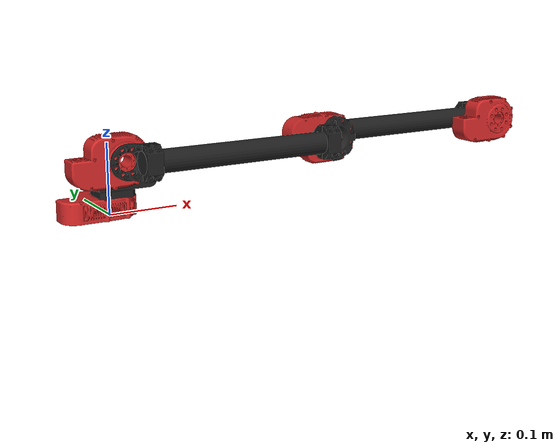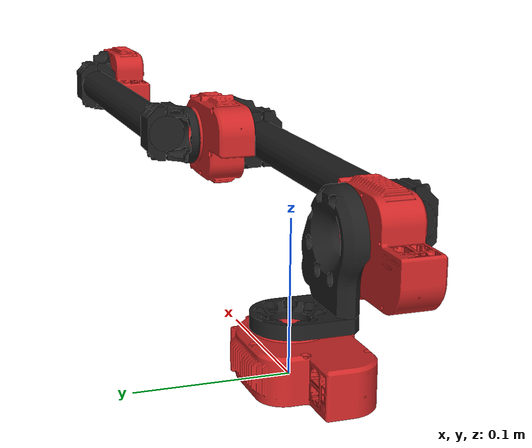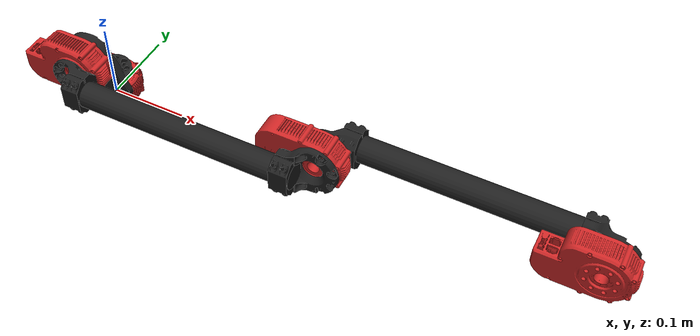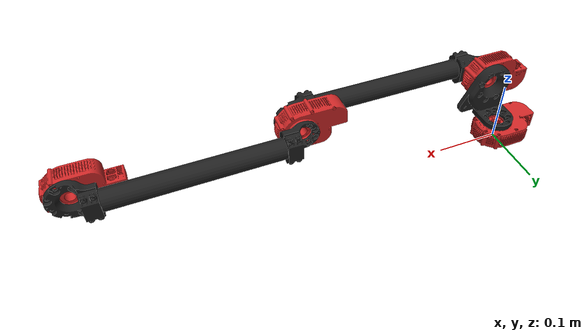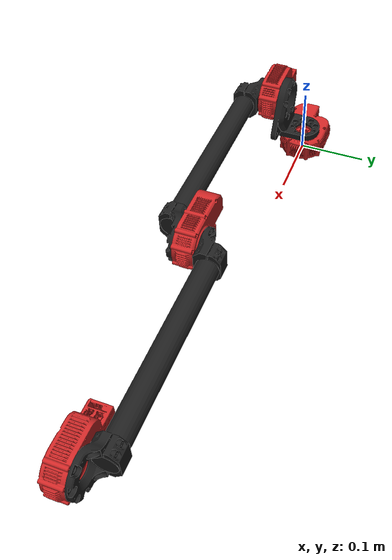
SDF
<sdf version='1.6'>
  <model name='A-2085-04'>
    <link name='Arm/J1_base/INPUT_INTERFACE'>
      <pose frame=''>0 0 0 0 -0 0</pose>
      <inertial>
        <pose frame=''>-0.0142 -0.0031 0.0165 0 -0 0</pose>
        <mass>0.335</mass>
        <inertia>
          <ixx>0.00015</ixx>
          <ixy>3.41e-05</ixy>
          <ixz>1.18e-05</ixz>
          <iyy>0.000255</iyy>
          <iyz>2.29e-06</iyz>
          <izz>0.00035</izz>
        </inertia>
      </inertial>
      <collision name='Arm/J1_base/INPUT_INTERFACE_collision'>
        <pose frame=''>0 0 0 0 -0 0</pose>
        <geometry>
          <mesh>
            <scale>0.001 0.001 0.001</scale>
            <uri>model://meshes/X5.stl</uri>
          </mesh>
        </geometry>
        <surface>
          <contact>
            <ode/>
          </contact>
          <friction>
            <ode/>
          </friction>
        </surface>
      </collision>
      <visual name='Arm/J1_base/INPUT_INTERFACE_visual'>
        <pose frame=''>0 0 0 0 -0 0</pose>
        <geometry>
          <mesh>
            <scale>0.001 0.001 0.001</scale>
            <uri>model://meshes/X5.stl</uri>
          </mesh>
        </geometry>
        <material>
          <script>
            <name>Gazebo/Red</name>
            <uri>file://media/materials/scripts/gazebo.material</uri>
          </script>
        </material>
      </visual>
      <gravity>1</gravity>
      <velocity_decay/>
    </link>
    <joint name='world_joint' type='fixed'>
      <child>Arm/J1_base/INPUT_INTERFACE</child>
      <parent>world</parent>
    </joint>
    <link name='shoulder_bracket/INPUT_INTERFACE'>
      <pose frame=''>0 0 0.031 0 -0 0</pose>
      <inertial>
        <pose frame=''>0 -0.01875 0.0275 0 -0 0</pose>
        <mass>0.215</mass>
        <inertia>
          <ixx>0.0003096</ixx>
          <ixy>0</ixy>
          <ixz>0</ixz>
          <iyy>0.0003096</iyy>
          <iyz>0</iyz>
          <izz>0.0003096</izz>
        </inertia>
      </inertial>
      <collision name='shoulder_bracket/INPUT_INTERFACE_collision'>
        <pose frame=''>0 0 0.005 1.5708 -0 1.5708</pose>
        <geometry>
          <mesh>
            <scale>0.001 0.001 0.001</scale>
            <uri>model://meshes/PM-2149-01.stl</uri>
          </mesh>
        </geometry>
        <surface>
          <contact>
            <ode/>
          </contact>
          <friction>
            <ode/>
          </friction>
        </surface>
      </collision>
      <collision name='shoulder_bracket/INPUT_INTERFACE_collision_1'>
        <pose frame=''>0 -0.03 0.04 1.5708 -0 0</pose>
        <geometry>
          <mesh>
            <scale>0.001 0.001 0.001</scale>
            <uri>model://meshes/PM-2150-01R.stl</uri>
          </mesh>
        </geometry>
        <surface>
          <contact>
            <ode/>
          </contact>
          <friction>
            <ode/>
          </friction>
        </surface>
      </collision>
      <visual name='shoulder_bracket/INPUT_INTERFACE_visual'>
        <pose frame=''>0 0 0.005 1.5708 -0 1.5708</pose>
        <geometry>
          <mesh>
            <scale>0.001 0.001 0.001</scale>
            <uri>model://meshes/PM-2149-01.stl</uri>
          </mesh>
        </geometry>
        <material>
          <script>
            <name>Gazebo/Black</name>
            <uri>file://media/materials/scripts/gazebo.material</uri>
          </script>
        </material>
      </visual>
      <visual name='shoulder_bracket/INPUT_INTERFACE_visual_1'>
        <pose frame=''>0 -0.03 0.04 1.5708 -0 0</pose>
        <geometry>
          <mesh>
            <scale>0.001 0.001 0.001</scale>
            <uri>model://meshes/PM-2150-01R.stl</uri>
          </mesh>
        </geometry>
        <material>
          <script>
            <name>Gazebo/Black</name>
            <uri>file://media/materials/scripts/gazebo.material</uri>
          </script>
        </material>
      </visual>
      <gravity>1</gravity>
      <velocity_decay/>
    </link>
    <joint name='Arm/J1_base' type='revolute'>
      <child>shoulder_bracket/INPUT_INTERFACE</child>
      <parent>Arm/J1_base/INPUT_INTERFACE</parent>
      <axis>
        <xyz>0 0 1</xyz>
        <limit>
          <lower>-1e+16</lower>
          <upper>1e+16</upper>
        </limit>
        <dynamics>
          <damping>0.1</damping>
          <friction>0.1</friction>
          <spring_reference>0</spring_reference>
          <spring_stiffness>0</spring_stiffness>
        </dynamics>
        <use_parent_model_frame>1</use_parent_model_frame>
      </axis>
    </joint>
    <link name='Arm/J2_shoulder/INPUT_INTERFACE'>
      <pose frame=''>0 -0.0375 0.086 1.5708 -0 0</pose>
      <inertial>
        <pose frame=''>-0.0142 -0.0031 0.0165 0 -0 0</pose>
        <mass>0.36</mass>
        <inertia>
          <ixx>0.00015</ixx>
          <ixy>3.41e-05</ixy>
          <ixz>1.18e-05</ixz>
          <iyy>0.000255</iyy>
          <iyz>2.29e-06</iyz>
          <izz>0.00035</izz>
        </inertia>
      </inertial>
      <collision name='Arm/J2_shoulder/INPUT_INTERFACE_collision'>
        <pose frame=''>0 0 0 0 -0 0</pose>
        <geometry>
          <mesh>
            <scale>0.001 0.001 0.001</scale>
            <uri>model://meshes/X5.stl</uri>
          </mesh>
        </geometry>
        <surface>
          <contact>
            <ode/>
          </contact>
          <friction>
            <ode/>
          </friction>
        </surface>
      </collision>
      <visual name='Arm/J2_shoulder/INPUT_INTERFACE_visual'>
        <pose frame=''>0 0 0 0 -0 0</pose>
        <geometry>
          <mesh>
            <scale>0.001 0.001 0.001</scale>
            <uri>model://meshes/X5.stl</uri>
          </mesh>
        </geometry>
        <material>
          <script>
            <name>Gazebo/Red</name>
            <uri>file://media/materials/scripts/gazebo.material</uri>
          </script>
        </material>
      </visual>
      <gravity>1</gravity>
      <velocity_decay/>
    </link>
    <joint name='shoulder_bracket/OUTPUT_INTERFACE' type='fixed'>
      <child>Arm/J2_shoulder/INPUT_INTERFACE</child>
      <parent>shoulder_bracket/INPUT_INTERFACE</parent>
      <axis>
        <dynamics>
          <spring_reference>0</spring_reference>
          <spring_stiffness>0</spring_stiffness>
        </dynamics>
        <use_parent_model_frame>1</use_parent_model_frame>
        <xyz>0 0 1</xyz>
        <limit>
          <lower>-1e+16</lower>
          <upper>1e+16</upper>
        </limit>
      </axis>
      <physics>
        <ode>
          <limit>
            <cfm>0</cfm>
            <erp>0.2</erp>
          </limit>
        </ode>
      </physics>
    </joint>
    <link name='shoulder_elbow/INPUT_INTERFACE'>
      <pose frame=''>0 -0.0685 0.086 1.5708 -0 0</pose>
      <inertial>
        <pose frame=''>0.1625 0 0.02 0 -0 0</pose>
        <mass>0.402</mass>
        <inertia>
          <ixx>0</ixx>
          <ixy>0</ixy>
          <ixz>0</ixz>
          <iyy>0.00353844</iyy>
          <iyz>0</iyz>
          <izz>0.00353844</izz>
        </inertia>
      </inertial>
      <collision name='shoulder_elbow/INPUT_INTERFACE_collision'>
        <pose frame=''>0 0 0 0 -0 0</pose>
        <geometry>
          <mesh>
            <scale>1 1 1</scale>
            <uri>model://meshes/A-2038-02.stl</uri>
          </mesh>
        </geometry>
        <surface>
          <contact>
            <ode/>
          </contact>
          <friction>
            <ode/>
          </friction>
        </surface>
      </collision>
      <collision name='shoulder_elbow/INPUT_INTERFACE_collision_1'>
        <pose frame=''>0.1625 0 0.02 3.14159 1.57079 3.14159</pose>
        <geometry>
          <cylinder>
            <length>0.2996</length>
            <radius>0.016</radius>
          </cylinder>
        </geometry>
        <surface>
          <contact>
            <ode/>
          </contact>
          <friction>
            <ode/>
          </friction>
        </surface>
      </collision>
      <collision name='shoulder_elbow/INPUT_INTERFACE_collision_2'>
        <pose frame=''>0.325 -0 0 3.14159 -0 0</pose>
        <geometry>
          <mesh>
            <scale>1 1 1</scale>
            <uri>model://meshes/A-2039-02.stl</uri>
          </mesh>
        </geometry>
        <surface>
          <contact>
            <ode/>
          </contact>
          <friction>
            <ode/>
          </friction>
        </surface>
      </collision>
      <visual name='shoulder_elbow/INPUT_INTERFACE_visual'>
        <pose frame=''>0 0 0 0 -0 0</pose>
        <geometry>
          <mesh>
            <scale>1 1 1</scale>
            <uri>model://meshes/A-2038-02.stl</uri>
          </mesh>
        </geometry>
        <material>
          <script>
            <name>Gazebo/Black</name>
            <uri>file://media/materials/scripts/gazebo.material</uri>
          </script>
        </material>
      </visual>
      <visual name='shoulder_elbow/INPUT_INTERFACE_visual_1'>
        <pose frame=''>0.1625 0 0.02 3.14159 1.57079 3.14159</pose>
        <geometry>
          <cylinder>
            <length>0.2996</length>
            <radius>0.016</radius>
          </cylinder>
        </geometry>
        <material>
          <script>
            <name>Gazebo/Black</name>
            <uri>file://media/materials/scripts/gazebo.material</uri>
          </script>
        </material>
      </visual>
      <visual name='shoulder_elbow/INPUT_INTERFACE_visual_2'>
        <pose frame=''>0.325 -0 0 3.14159 -0 0</pose>
        <geometry>
          <mesh>
            <scale>1 1 1</scale>
            <uri>model://meshes/A-2039-02.stl</uri>
          </mesh>
        </geometry>
        <material>
          <script>
            <name>Gazebo/Black</name>
            <uri>file://media/materials/scripts/gazebo.material</uri>
          </script>
        </material>
      </visual>
      <gravity>1</gravity>
      <velocity_decay/>
    </link>
    <joint name='Arm/J2_shoulder' type='revolute'>
      <child>shoulder_elbow/INPUT_INTERFACE</child>
      <parent>Arm/J2_shoulder/INPUT_INTERFACE</parent>
      <axis>
        <xyz>0 -1 0</xyz>
        <limit>
          <lower>-1e+16</lower>
          <upper>1e+16</upper>
        </limit>
        <dynamics>
          <damping>0.1</damping>
          <friction>0.1</friction>
          <spring_reference>0</spring_reference>
          <spring_stiffness>0</spring_stiffness>
        </dynamics>
        <use_parent_model_frame>1</use_parent_model_frame>
      </axis>
    </joint>
    <link name='Arm/J3_elbow/INPUT_INTERFACE'>
      <pose frame=''>0.325 -0.0685 0.086 -1.5708 -0 0</pose>
      <inertial>
        <pose frame=''>-0.0142 -0.0031 0.0165 0 -0 0</pose>
        <mass>0.335</mass>
        <inertia>
          <ixx>0.00015</ixx>
          <ixy>3.41e-05</ixy>
          <ixz>1.18e-05</ixz>
          <iyy>0.000255</iyy>
          <iyz>2.29e-06</iyz>
          <izz>0.00035</izz>
        </inertia>
      </inertial>
      <collision name='Arm/J3_elbow/INPUT_INTERFACE_collision'>
        <pose frame=''>0 0 0 0 -0 0</pose>
        <geometry>
          <mesh>
            <scale>0.001 0.001 0.001</scale>
            <uri>model://meshes/X5.stl</uri>
          </mesh>
        </geometry>
        <surface>
          <contact>
            <ode/>
          </contact>
          <friction>
            <ode/>
          </friction>
        </surface>
      </collision>
      <visual name='Arm/J3_elbow/INPUT_INTERFACE_visual'>
        <pose frame=''>0 0 0 0 -0 0</pose>
        <geometry>
          <mesh>
            <scale>0.001 0.001 0.001</scale>
            <uri>model://meshes/X5.stl</uri>
          </mesh>
        </geometry>
        <material>
          <script>
            <name>Gazebo/Red</name>
            <uri>file://media/materials/scripts/gazebo.material</uri>
          </script>
        </material>
      </visual>
      <gravity>1</gravity>
      <velocity_decay/>
    </link>
    <joint name='shoulder_elbow/OUTPUT_JOINT' type='fixed'>
      <child>Arm/J3_elbow/INPUT_INTERFACE</child>
      <parent>shoulder_elbow/INPUT_INTERFACE</parent>
      <axis>
        <dynamics>
          <spring_reference>0</spring_reference>
          <spring_stiffness>0</spring_stiffness>
        </dynamics>
        <use_parent_model_frame>1</use_parent_model_frame>
        <xyz>0 0 1</xyz>
        <limit>
          <lower>-1e+16</lower>
          <upper>1e+16</upper>
        </limit>
      </axis>
      <physics>
        <ode>
          <limit>
            <cfm>0</cfm>
            <erp>0.2</erp>
          </limit>
        </ode>
      </physics>
    </joint>
    <link name='elbow_wrist/INPUT_INTERFACE'>
      <pose frame=''>0.325 -0.0375 0.086 -1.5708 -0 0</pose>
      <inertial>
        <pose frame=''>0.1625 0 0.02 0 -0 0</pose>
        <mass>0.402</mass>
        <inertia>
          <ixx>0</ixx>
          <ixy>0</ixy>
          <ixz>0</ixz>
          <iyy>0.00353844</iyy>
          <iyz>0</iyz>
          <izz>0.00353844</izz>
        </inertia>
      </inertial>
      <collision name='elbow_wrist/INPUT_INTERFACE_collision'>
        <pose frame=''>0 0 0 0 -0 0</pose>
        <geometry>
          <mesh>
            <scale>1 1 1</scale>
            <uri>model://meshes/A-2038-02.stl</uri>
          </mesh>
        </geometry>
        <surface>
          <contact>
            <ode/>
          </contact>
          <friction>
            <ode/>
          </friction>
        </surface>
      </collision>
      <collision name='elbow_wrist/INPUT_INTERFACE_collision_1'>
        <pose frame=''>0.1625 0 0.02 3.14159 1.57079 3.14159</pose>
        <geometry>
          <cylinder>
            <length>0.2996</length>
            <radius>0.016</radius>
          </cylinder>
        </geometry>
        <surface>
          <contact>
            <ode/>
          </contact>
          <friction>
            <ode/>
          </friction>
        </surface>
      </collision>
      <collision name='elbow_wrist/INPUT_INTERFACE_collision_2'>
        <pose frame=''>0.325 -0 0 3.14159 -0 0</pose>
        <geometry>
          <mesh>
            <scale>1 1 1</scale>
            <uri>model://meshes/A-2039-02.stl</uri>
          </mesh>
        </geometry>
        <surface>
          <contact>
            <ode/>
          </contact>
          <friction>
            <ode/>
          </friction>
        </surface>
      </collision>
      <visual name='elbow_wrist/INPUT_INTERFACE_visual'>
        <pose frame=''>0 0 0 0 -0 0</pose>
        <geometry>
          <mesh>
            <scale>1 1 1</scale>
            <uri>model://meshes/A-2038-02.stl</uri>
          </mesh>
        </geometry>
        <material>
          <script>
            <name>Gazebo/Black</name>
            <uri>file://media/materials/scripts/gazebo.material</uri>
          </script>
        </material>
      </visual>
      <visual name='elbow_wrist/INPUT_INTERFACE_visual_1'>
        <pose frame=''>0.1625 0 0.02 3.14159 1.57079 3.14159</pose>
        <geometry>
          <cylinder>
            <length>0.2996</length>
            <radius>0.016</radius>
          </cylinder>
        </geometry>
        <material>
          <script>
            <name>Gazebo/Black</name>
            <uri>file://media/materials/scripts/gazebo.material</uri>
          </script>
        </material>
      </visual>
      <visual name='elbow_wrist/INPUT_INTERFACE_visual_2'>
        <pose frame=''>0.325 -0 0 3.14159 -0 0</pose>
        <geometry>
          <mesh>
            <scale>1 1 1</scale>
            <uri>model://meshes/A-2039-02.stl</uri>
          </mesh>
        </geometry>
        <material>
          <script>
            <name>Gazebo/Black</name>
            <uri>file://media/materials/scripts/gazebo.material</uri>
          </script>
        </material>
      </visual>
      <gravity>1</gravity>
      <velocity_decay/>
    </link>
    <joint name='Arm/J3_elbow' type='revolute'>
      <child>elbow_wrist/INPUT_INTERFACE</child>
      <parent>Arm/J3_elbow/INPUT_INTERFACE</parent>
      <axis>
        <xyz>0 1 -0</xyz>
        <limit>
          <lower>-1e+16</lower>
          <upper>1e+16</upper>
        </limit>
        <dynamics>
          <damping>0.1</damping>
          <friction>0.1</friction>
          <spring_reference>0</spring_reference>
          <spring_stiffness>0</spring_stiffness>
        </dynamics>
        <use_parent_model_frame>1</use_parent_model_frame>
      </axis>
    </joint>
    <link name='Arm/J4_wrist/INPUT_INTERFACE'>
      <pose frame=''>0.65 -0.0375 0.086 1.5708 -0 0</pose>
      <inertial>
        <pose frame=''>-0.0142 -0.0031 0.0165 0 -0 0</pose>
        <mass>0.315</mass>
        <inertia>
          <ixx>0.00015</ixx>
          <ixy>3.41e-05</ixy>
          <ixz>1.18e-05</ixz>
          <iyy>0.000255</iyy>
          <iyz>2.29e-06</iyz>
          <izz>0.00035</izz>
        </inertia>
      </inertial>
      <collision name='Arm/J4_wrist/INPUT_INTERFACE_collision'>
        <pose frame=''>0 0 0 0 -0 0</pose>
        <geometry>
          <mesh>
            <scale>0.001 0.001 0.001</scale>
            <uri>model://meshes/X5.stl</uri>
          </mesh>
        </geometry>
        <surface>
          <contact>
            <ode/>
          </contact>
          <friction>
            <ode/>
          </friction>
        </surface>
      </collision>
      <visual name='Arm/J4_wrist/INPUT_INTERFACE_visual'>
        <pose frame=''>0 0 0 0 -0 0</pose>
        <geometry>
          <mesh>
            <scale>0.001 0.001 0.001</scale>
            <uri>model://meshes/X5.stl</uri>
          </mesh>
        </geometry>
        <material>
          <script>
            <name>Gazebo/Red</name>
            <uri>file://media/materials/scripts/gazebo.material</uri>
          </script>
        </material>
      </visual>
      <gravity>1</gravity>
      <velocity_decay/>
    </link>
    <joint name='elbow_wrist/OUTPUT_JOINT' type='fixed'>
      <child>Arm/J4_wrist/INPUT_INTERFACE</child>
      <parent>elbow_wrist/INPUT_INTERFACE</parent>
      <axis>
        <dynamics>
          <spring_reference>0</spring_reference>
          <spring_stiffness>0</spring_stiffness>
        </dynamics>
        <use_parent_model_frame>1</use_parent_model_frame>
        <xyz>0 0 1</xyz>
        <limit>
          <lower>-1e+16</lower>
          <upper>1e+16</upper>
        </limit>
      </axis>
      <physics>
        <ode>
          <limit>
            <cfm>0</cfm>
            <erp>0.2</erp>
          </limit>
        </ode>
      </physics>
    </joint>
    <link name='HEBI_SIM/Arm/J4_wrist/X5_1'>
      <pose frame=''>0.65 -0.0375 0.086 1.5708 -0 0</pose>
      <inertial>
        <pose frame=''>0 0 0 0 -0 0</pose>
        <mass>0.001</mass>
        <inertia>
          <ixx>1e-06</ixx>
          <ixy>0</ixy>
          <ixz>0</ixz>
          <iyy>1e-06</iyy>
          <iyz>0</iyz>
          <izz>1e-06</izz>
        </inertia>
      </inertial>
      <visual name='HEBI_SIM/Arm/J4_wrist/X5_1_visual'>
        <pose frame=''>-0.03 0 0.02 0 -0 0</pose>
        <geometry>
          <sphere>
            <radius>0.001</radius>
          </sphere>
        </geometry>
      </visual>
    </link>
    <joint name='HEBI_SIM_JOINT/Arm/J4_wrist' type='fixed'>
      <child>HEBI_SIM/Arm/J4_wrist/X5_1</child>
      <parent>Arm/J4_wrist/INPUT_INTERFACE</parent>
      <axis>
        <dynamics>
          <spring_reference>0</spring_reference>
          <spring_stiffness>0</spring_stiffness>
        </dynamics>
        <use_parent_model_frame>1</use_parent_model_frame>
        <xyz>0 0 1</xyz>
        <limit>
          <lower>-1e+16</lower>
          <upper>1e+16</upper>
        </limit>
      </axis>
      <physics>
        <ode>
          <limit>
            <cfm>0</cfm>
            <erp>0.2</erp>
          </limit>
        </ode>
      </physics>
    </joint>
    <link name='HEBI_SIM/Arm/J3_elbow/X5_4'>
      <pose frame=''>0.325 -0.0685 0.086 -1.5708 -0 0</pose>
      <inertial>
        <pose frame=''>0 0 0 0 -0 0</pose>
        <mass>0.001</mass>
        <inertia>
          <ixx>1e-06</ixx>
          <ixy>0</ixy>
          <ixz>0</ixz>
          <iyy>1e-06</iyy>
          <iyz>0</iyz>
          <izz>1e-06</izz>
        </inertia>
      </inertial>
      <visual name='HEBI_SIM/Arm/J3_elbow/X5_4_visual'>
        <pose frame=''>-0.03 0 0.02 0 -0 0</pose>
        <geometry>
          <sphere>
            <radius>0.001</radius>
          </sphere>
        </geometry>
      </visual>
    </link>
    <joint name='HEBI_SIM_JOINT/Arm/J3_elbow' type='fixed'>
      <child>HEBI_SIM/Arm/J3_elbow/X5_4</child>
      <parent>Arm/J3_elbow/INPUT_INTERFACE</parent>
      <axis>
        <dynamics>
          <spring_reference>0</spring_reference>
          <spring_stiffness>0</spring_stiffness>
        </dynamics>
        <use_parent_model_frame>1</use_parent_model_frame>
        <xyz>0 0 1</xyz>
        <limit>
          <lower>-1e+16</lower>
          <upper>1e+16</upper>
        </limit>
      </axis>
      <physics>
        <ode>
          <limit>
            <cfm>0</cfm>
            <erp>0.2</erp>
          </limit>
        </ode>
      </physics>
    </joint>
    <link name='HEBI_SIM/Arm/J2_shoulder/X5_9'>
      <pose frame=''>0 -0.0375 0.086 1.5708 -0 0</pose>
      <inertial>
        <pose frame=''>0 0 0 0 -0 0</pose>
        <mass>0.001</mass>
        <inertia>
          <ixx>1e-06</ixx>
          <ixy>0</ixy>
          <ixz>0</ixz>
          <iyy>1e-06</iyy>
          <iyz>0</iyz>
          <izz>1e-06</izz>
        </inertia>
      </inertial>
      <visual name='HEBI_SIM/Arm/J2_shoulder/X5_9_visual'>
        <pose frame=''>-0.03 0 0.02 0 -0 0</pose>
        <geometry>
          <sphere>
            <radius>0.001</radius>
          </sphere>
        </geometry>
      </visual>
    </link>
    <joint name='HEBI_SIM_JOINT/Arm/J2_shoulder' type='fixed'>
      <child>HEBI_SIM/Arm/J2_shoulder/X5_9</child>
      <parent>Arm/J2_shoulder/INPUT_INTERFACE</parent>
      <axis>
        <dynamics>
          <spring_reference>0</spring_reference>
          <spring_stiffness>0</spring_stiffness>
        </dynamics>
        <use_parent_model_frame>1</use_parent_model_frame>
        <xyz>0 0 1</xyz>
        <limit>
          <lower>-1e+16</lower>
          <upper>1e+16</upper>
        </limit>
      </axis>
      <physics>
        <ode>
          <limit>
            <cfm>0</cfm>
            <erp>0.2</erp>
          </limit>
        </ode>
      </physics>
    </joint>
    <link name='HEBI_SIM/Arm/J1_base/X5_4'>
      <pose frame=''>0 0 0 0 -0 0</pose>
      <inertial>
        <pose frame=''>0 0 0 0 -0 0</pose>
        <mass>0.001</mass>
        <inertia>
          <ixx>1e-06</ixx>
          <ixy>0</ixy>
          <ixz>0</ixz>
          <iyy>1e-06</iyy>
          <iyz>0</iyz>
          <izz>1e-06</izz>
        </inertia>
      </inertial>
      <visual name='HEBI_SIM/Arm/J1_base/X5_4_visual'>
        <pose frame=''>-0.03 0 0.02 0 -0 0</pose>
        <geometry>
          <sphere>
            <radius>0.001</radius>
          </sphere>
        </geometry>
      </visual>
    </link>
    <joint name='HEBI_SIM_JOINT/Arm/J1_base' type='fixed'>
      <child>HEBI_SIM/Arm/J1_base/X5_4</child>
      <parent>Arm/J1_base/INPUT_INTERFACE</parent>
      <axis>
        <dynamics>
          <spring_reference>0</spring_reference>
          <spring_stiffness>0</spring_stiffness>
        </dynamics>
        <use_parent_model_frame>1</use_parent_model_frame>
        <xyz>0 0 1</xyz>
        <limit>
          <lower>-1e+16</lower>
          <upper>1e+16</upper>
        </limit>
      </axis>
      <physics>
        <ode>
          <limit>
            <cfm>0</cfm>
            <erp>0.2</erp>
          </limit>
        </ode>
      </physics>
    </joint>
    <static>0</static>
    <plugin name='hebi_gazebo_plugin' filename='libhebi_gazebo_plugin.so'/>
  </model>
</sdf>
